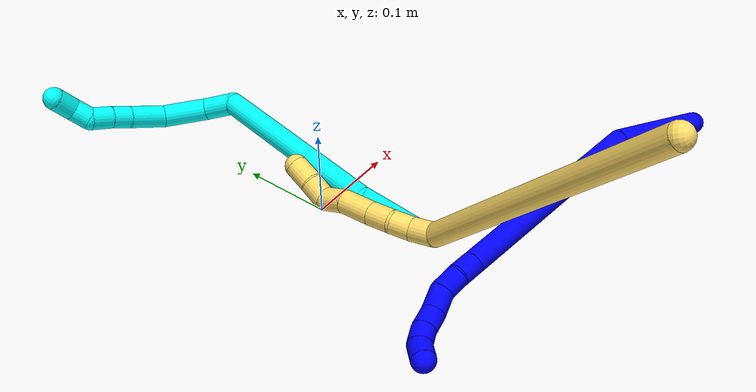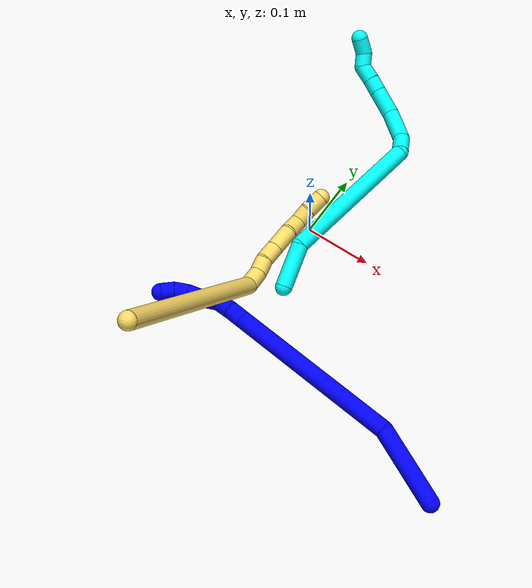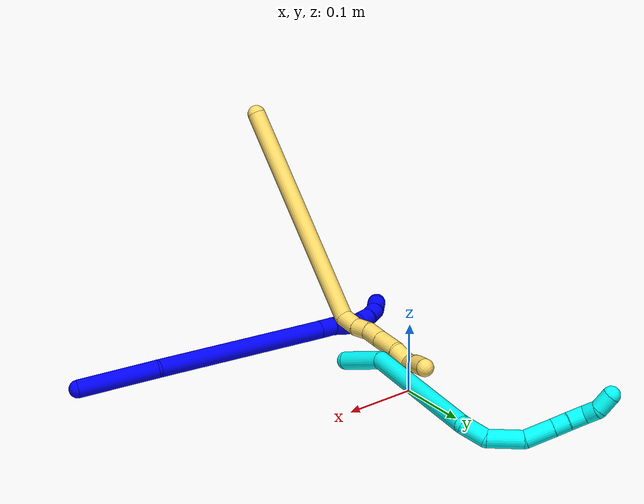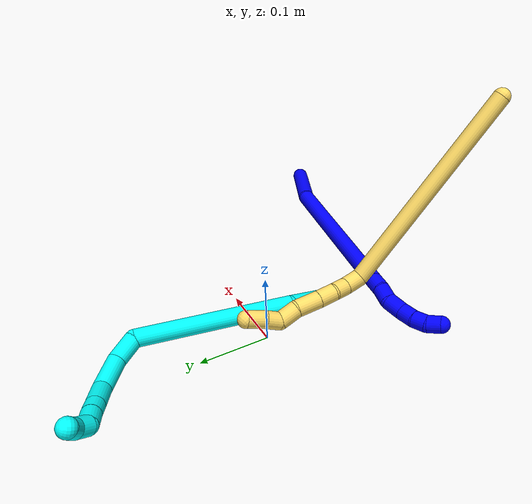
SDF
<sdf version="1.7">
 <world name="default">
  <model name="1">
   <static>0</static>
   <link name="1">
    <collision name="collision-cylinder-e_1_1_4">
     <pose>-0.034227 -0.004845 -0.044268 3.03258 -0.655284 -2.82325</pose>
     <geometry><cylinder><radius>0.0125</radius><length>0.112332</length></cylinder></geometry>
     <surface>
      <friction><ode><mu>1.16</mu><mu2>1.16</mu2><slip1>0</slip1><slip2>0</slip2></ode></friction>
      <contact><ode><kp>1e+06</kp><kd>1</kd><max_vel>0</max_vel><min_depth>0.001</min_depth></ode></contact>
     </surface>
    </collision>
    <visual name="visual-cylinder-e_1_1_4">
     <pose>-0.034227 -0.004845 -0.044268 3.03258 -0.655284 -2.82325</pose>
     <geometry><cylinder><radius>0.0125</radius><length>0.112332</length></cylinder></geometry>
     <material><ambient>0 0 1 1</ambient></material>
    </visual>
    <collision name="collision-cylinder-e_2_4_5">
     <pose>-0.110835 -0.000131 -0.207225 -3.06122 -0.341947 2.68399</pose>
     <geometry><cylinder><radius>0.0125</radius><length>0.25278</length></cylinder></geometry>
     <surface>
      <friction><ode><mu>1.16</mu><mu2>1.16</mu2><slip1>0</slip1><slip2>0</slip2></ode></friction>
      <contact><ode><kp>1e+06</kp><kd>1</kd><max_vel>0</max_vel><min_depth>0.001</min_depth></ode></contact>
     </surface>
    </collision>
    <visual name="visual-cylinder-e_2_4_5">
     <pose>-0.110835 -0.000131 -0.207225 -3.06122 -0.341947 2.68399</pose>
     <geometry><cylinder><radius>0.0125</radius><length>0.25278</length></cylinder></geometry>
     <material><ambient>0 0 1 1</ambient></material>
    </visual>
    <collision name="collision-cylinder-e_3_5_6">
     <pose>-0.156997 0.0101 -0.336649 -3.07926 -0.337997 2.78016</pose>
     <geometry><cylinder><radius>0.0125</radius><length>0.022804</length></cylinder></geometry>
     <surface>
      <friction><ode><mu>1.16</mu><mu2>1.16</mu2><slip1>0</slip1><slip2>0</slip2></ode></friction>
      <contact><ode><kp>1e+06</kp><kd>1</kd><max_vel>0</max_vel><min_depth>0.001</min_depth></ode></contact>
     </surface>
    </collision>
    <visual name="visual-cylinder-e_3_5_6">
     <pose>-0.156997 0.0101 -0.336649 -3.07926 -0.337997 2.78016</pose>
     <geometry><cylinder><radius>0.0125</radius><length>0.022804</length></cylinder></geometry>
     <material><ambient>0 0 1 1</ambient></material>
    </visual>
    <collision name="collision-cylinder-e_4_6_7">
     <pose>-0.164621 0.013742 -0.358194 -2.87326 -0.330274 1.78007</pose>
     <geometry><cylinder><radius>0.0125</radius><length>0.023702</length></cylinder></geometry>
     <surface>
      <friction><ode><mu>1.16</mu><mu2>1.16</mu2><slip1>0</slip1><slip2>0</slip2></ode></friction>
      <contact><ode><kp>1e+06</kp><kd>1</kd><max_vel>0</max_vel><min_depth>0.001</min_depth></ode></contact>
     </surface>
    </collision>
    <visual name="visual-cylinder-e_4_6_7">
     <pose>-0.164621 0.013742 -0.358194 -2.87326 -0.330274 1.78007</pose>
     <geometry><cylinder><radius>0.0125</radius><length>0.023702</length></cylinder></geometry>
     <material><ambient>0 0 1 1</ambient></material>
    </visual>
    <collision name="collision-cylinder-e_5_7_8">
     <pose>-0.16768 0.01943 -0.381578 -2.92882 0.060899 -0.555706</pose>
     <geometry><cylinder><radius>0.0125</radius><length>0.025776</length></cylinder></geometry>
     <surface>
      <friction><ode><mu>1.16</mu><mu2>1.16</mu2><slip1>0</slip1><slip2>0</slip2></ode></friction>
      <contact><ode><kp>1e+06</kp><kd>1</kd><max_vel>0</max_vel><min_depth>0.001</min_depth></ode></contact>
     </surface>
    </collision>
    <visual name="visual-cylinder-e_5_7_8">
     <pose>-0.16768 0.01943 -0.381578 -2.92882 0.060899 -0.555706</pose>
     <geometry><cylinder><radius>0.0125</radius><length>0.025776</length></cylinder></geometry>
     <material><ambient>0 0 1 1</ambient></material>
    </visual>
    <collision name="collision-cylinder-e_6_8_9">
     <pose>-0.167195 0.022464 -0.405319 -3.11317 -0.026804 1.51223</pose>
     <geometry><cylinder><radius>0.0125</radius><length>0.022351</length></cylinder></geometry>
     <surface>
      <friction><ode><mu>1.16</mu><mu2>1.16</mu2><slip1>0</slip1><slip2>0</slip2></ode></friction>
      <contact><ode><kp>1e+06</kp><kd>1</kd><max_vel>0</max_vel><min_depth>0.001</min_depth></ode></contact>
     </surface>
    </collision>
    <visual name="visual-cylinder-e_6_8_9">
     <pose>-0.167195 0.022464 -0.405319 -3.11317 -0.026804 1.51223</pose>
     <geometry><cylinder><radius>0.0125</radius><length>0.022351</length></cylinder></geometry>
     <material><ambient>0 0 1 1</ambient></material>
    </visual>
    <collision name="collision-cylinder-e_7_9_10">
     <pose>-0.165621 0.022345 -0.426383 3.09752 0.186944 2.67977</pose>
     <geometry><cylinder><radius>0.0125</radius><length>0.020166</length></cylinder></geometry>
     <surface>
      <friction><ode><mu>1.16</mu><mu2>1.16</mu2><slip1>0</slip1><slip2>0</slip2></ode></friction>
      <contact><ode><kp>1e+06</kp><kd>1</kd><max_vel>0</max_vel><min_depth>0.001</min_depth></ode></contact>
     </surface>
    </collision>
    <visual name="visual-cylinder-e_7_9_10">
     <pose>-0.165621 0.022345 -0.426383 3.09752 0.186944 2.67977</pose>
     <geometry><cylinder><radius>0.0125</radius><length>0.020166</length></cylinder></geometry>
     <material><ambient>0 0 1 1</ambient></material>
    </visual>
    <collision name="collision-cylinder-e_8_10_2">
     <pose>-0.158561 0.020172 -0.444706 2.93833 0.542475 2.43859</pose>
     <geometry><cylinder><radius>0.0125</radius><length>0.020088</length></cylinder></geometry>
     <surface>
      <friction><ode><mu>1.16</mu><mu2>1.16</mu2><slip1>0</slip1><slip2>0</slip2></ode></friction>
      <contact><ode><kp>1e+06</kp><kd>1</kd><max_vel>0</max_vel><min_depth>0.001</min_depth></ode></contact>
     </surface>
    </collision>
    <visual name="visual-cylinder-e_8_10_2">
     <pose>-0.158561 0.020172 -0.444706 2.93833 0.542475 2.43859</pose>
     <geometry><cylinder><radius>0.0125</radius><length>0.020088</length></cylinder></geometry>
     <material><ambient>0 0 1 1</ambient></material>
    </visual>
    <collision name="collision-sphere-2">
     <pose>-0.153376 0.018436 -0.453131 0 -0 0</pose>
     <geometry><sphere><radius>0.0125</radius></sphere></geometry>
     <surface>
      <friction><ode><mu>1.16</mu><mu2>1.16</mu2><slip1>0</slip1><slip2>0</slip2></ode></friction>
      <contact><ode><kp>1e+06</kp><kd>1</kd><max_vel>0</max_vel><min_depth>0.001</min_depth></ode></contact>
     </surface>
    </collision>
    <visual name="visual-sphere-2">
     <pose>-0.153376 0.018436 -0.453131 0 -0 0</pose>
     <geometry><sphere><radius>0.0125</radius></sphere></geometry>
     <material><ambient>0 0 1 1</ambient></material>
    </visual>
    <collision name="collision-sphere-10">
     <pose>-0.163747 0.021909 -0.436281 0 -0 0</pose>
     <geometry><sphere><radius>0.0125</radius></sphere></geometry>
     <surface>
      <friction><ode><mu>1.16</mu><mu2>1.16</mu2><slip1>0</slip1><slip2>0</slip2></ode></friction>
      <contact><ode><kp>1e+06</kp><kd>1</kd><max_vel>0</max_vel><min_depth>0.001</min_depth></ode></contact>
     </surface>
    </collision>
    <visual name="visual-sphere-10">
     <pose>-0.163747 0.021909 -0.436281 0 -0 0</pose>
     <geometry><sphere><radius>0.0125</radius></sphere></geometry>
     <material><ambient>0 0 1 1</ambient></material>
    </visual>
    <collision name="collision-sphere-9">
     <pose>-0.167495 0.022782 -0.416486 0 -0 0</pose>
     <geometry><sphere><radius>0.0125</radius></sphere></geometry>
     <surface>
      <friction><ode><mu>1.16</mu><mu2>1.16</mu2><slip1>0</slip1><slip2>0</slip2></ode></friction>
      <contact><ode><kp>1e+06</kp><kd>1</kd><max_vel>0</max_vel><min_depth>0.001</min_depth></ode></contact>
     </surface>
    </collision>
    <visual name="visual-sphere-9">
     <pose>-0.167495 0.022782 -0.416486 0 -0 0</pose>
     <geometry><sphere><radius>0.0125</radius></sphere></geometry>
     <material><ambient>0 0 1 1</ambient></material>
    </visual>
    <collision name="collision-sphere-4">
     <pose>-0.068453 -0.009691 -0.088537 0 -0 0</pose>
     <geometry><sphere><radius>0.0125</radius></sphere></geometry>
     <surface>
      <friction><ode><mu>1.16</mu><mu2>1.16</mu2><slip1>0</slip1><slip2>0</slip2></ode></friction>
      <contact><ode><kp>1e+06</kp><kd>1</kd><max_vel>0</max_vel><min_depth>0.001</min_depth></ode></contact>
     </surface>
    </collision>
    <visual name="visual-sphere-4">
     <pose>-0.068453 -0.009691 -0.088537 0 -0 0</pose>
     <geometry><sphere><radius>0.0125</radius></sphere></geometry>
     <material><ambient>0 0 1 1</ambient></material>
    </visual>
    <collision name="collision-sphere-1">
     <geometry><sphere><radius>0.0125</radius></sphere></geometry>
     <surface>
      <friction><ode><mu>1.16</mu><mu2>1.16</mu2><slip1>0</slip1><slip2>0</slip2></ode></friction>
      <contact><ode><kp>1e+06</kp><kd>1</kd><max_vel>0</max_vel><min_depth>0.001</min_depth></ode></contact>
     </surface>
    </collision>
    <visual name="visual-sphere-1">
     <geometry><sphere><radius>0.0125</radius></sphere></geometry>
     <material><ambient>0 0 1 1</ambient></material>
    </visual>
    <collision name="collision-sphere-8">
     <pose>-0.166896 0.022147 -0.394152 0 -0 0</pose>
     <geometry><sphere><radius>0.0125</radius></sphere></geometry>
     <surface>
      <friction><ode><mu>1.16</mu><mu2>1.16</mu2><slip1>0</slip1><slip2>0</slip2></ode></friction>
      <contact><ode><kp>1e+06</kp><kd>1</kd><max_vel>0</max_vel><min_depth>0.001</min_depth></ode></contact>
     </surface>
    </collision>
    <visual name="visual-sphere-8">
     <pose>-0.166896 0.022147 -0.394152 0 -0 0</pose>
     <geometry><sphere><radius>0.0125</radius></sphere></geometry>
     <material><ambient>0 0 1 1</ambient></material>
    </visual>
    <collision name="collision-sphere-5">
     <pose>-0.153216 0.00943 -0.325913 0 -0 0</pose>
     <geometry><sphere><radius>0.0125</radius></sphere></geometry>
     <surface>
      <friction><ode><mu>1.16</mu><mu2>1.16</mu2><slip1>0</slip1><slip2>0</slip2></ode></friction>
      <contact><ode><kp>1e+06</kp><kd>1</kd><max_vel>0</max_vel><min_depth>0.001</min_depth></ode></contact>
     </surface>
    </collision>
    <visual name="visual-sphere-5">
     <pose>-0.153216 0.00943 -0.325913 0 -0 0</pose>
     <geometry><sphere><radius>0.0125</radius></sphere></geometry>
     <material><ambient>0 0 1 1</ambient></material>
    </visual>
    <collision name="collision-sphere-6">
     <pose>-0.160778 0.01077 -0.347385 0 -0 0</pose>
     <geometry><sphere><radius>0.0125</radius></sphere></geometry>
     <surface>
      <friction><ode><mu>1.16</mu><mu2>1.16</mu2><slip1>0</slip1><slip2>0</slip2></ode></friction>
      <contact><ode><kp>1e+06</kp><kd>1</kd><max_vel>0</max_vel><min_depth>0.001</min_depth></ode></contact>
     </surface>
    </collision>
    <visual name="visual-sphere-6">
     <pose>-0.160778 0.01077 -0.347385 0 -0 0</pose>
     <geometry><sphere><radius>0.0125</radius></sphere></geometry>
     <material><ambient>0 0 1 1</ambient></material>
    </visual>
    <collision name="collision-sphere-7">
     <pose>-0.168465 0.016714 -0.369004 0 -0 0</pose>
     <geometry><sphere><radius>0.0125</radius></sphere></geometry>
     <surface>
      <friction><ode><mu>1.16</mu><mu2>1.16</mu2><slip1>0</slip1><slip2>0</slip2></ode></friction>
      <contact><ode><kp>1e+06</kp><kd>1</kd><max_vel>0</max_vel><min_depth>0.001</min_depth></ode></contact>
     </surface>
    </collision>
    <visual name="visual-sphere-7">
     <pose>-0.168465 0.016714 -0.369004 0 -0 0</pose>
     <geometry><sphere><radius>0.0125</radius></sphere></geometry>
     <material><ambient>0 0 1 1</ambient></material>
    </visual>
    <inertial>
     <pose>-0.107856 0.003675 -0.219897 0 -0 0</pose>
     <mass>0.5</mass>
     <inertia>
      <ixx>-0.000714</ixx>
      <ixy>0</ixy>
      <ixz>0</ixz>
      <iyy>0.001889</iyy>
      <iyz>0</iyz>
      <izz>0.000401</izz>
     </inertia>
    </inertial>
   </link>
   <pose>0.363833 -0.259538 0.012311 -1.59137 0.085326 -1.34274</pose>
  </model>
  <model name="3">
   <static>0</static>
   <link name="3">
    <collision name="collision-cylinder-e_1_1_4">
     <pose>-0.006513 0.004417 0.031629 -0.138763 -0.201174 0.014027</pose>
     <geometry><cylinder><radius>0.0125</radius><length>0.065187</length></cylinder></geometry>
     <surface>
      <friction><ode><mu>1.16</mu><mu2>1.16</mu2><slip1>0</slip1><slip2>0</slip2></ode></friction>
      <contact><ode><kp>1e+06</kp><kd>1</kd><max_vel>0</max_vel><min_depth>0.001</min_depth></ode></contact>
     </surface>
    </collision>
    <visual name="visual-cylinder-e_1_1_4">
     <pose>-0.006513 0.004417 0.031629 -0.138763 -0.201174 0.014027</pose>
     <geometry><cylinder><radius>0.0125</radius><length>0.065187</length></cylinder></geometry>
     <material><ambient>0.003922 1 0.996078 1</ambient></material>
    </visual>
    <collision name="collision-cylinder-e_2_4_5">
     <pose>0.009282 0.049785 0.161273 -0.395752 0.206992 -0.041645</pose>
     <geometry><cylinder><radius>0.0125</radius><length>0.217084</length></cylinder></geometry>
     <surface>
      <friction><ode><mu>1.16</mu><mu2>1.16</mu2><slip1>0</slip1><slip2>0</slip2></ode></friction>
      <contact><ode><kp>1e+06</kp><kd>1</kd><max_vel>0</max_vel><min_depth>0.001</min_depth></ode></contact>
     </surface>
    </collision>
    <visual name="visual-cylinder-e_2_4_5">
     <pose>0.009282 0.049785 0.161273 -0.395752 0.206992 -0.041645</pose>
     <geometry><cylinder><radius>0.0125</radius><length>0.217084</length></cylinder></geometry>
     <material><ambient>0.003922 1 0.996078 1</ambient></material>
    </visual>
    <collision name="collision-cylinder-e_3_5_6">
     <pose>0.025877 0.103856 0.269974 -0.887317 -0.325511 0.155767</pose>
     <geometry><cylinder><radius>0.0125</radius><length>0.035721</length></cylinder></geometry>
     <surface>
      <friction><ode><mu>1.16</mu><mu2>1.16</mu2><slip1>0</slip1><slip2>0</slip2></ode></friction>
      <contact><ode><kp>1e+06</kp><kd>1</kd><max_vel>0</max_vel><min_depth>0.001</min_depth></ode></contact>
     </surface>
    </collision>
    <visual name="visual-cylinder-e_3_5_6">
     <pose>0.025877 0.103856 0.269974 -0.887317 -0.325511 0.155767</pose>
     <geometry><cylinder><radius>0.0125</radius><length>0.035721</length></cylinder></geometry>
     <material><ambient>0.003922 1 0.996078 1</ambient></material>
    </visual>
    <collision name="collision-cylinder-e_4_6_7">
     <pose>0.001812 0.127265 0.294209 -0.649434 -0.823343 0.291871</pose>
     <geometry><cylinder><radius>0.0125</radius><length>0.05005</length></cylinder></geometry>
     <surface>
      <friction><ode><mu>1.16</mu><mu2>1.16</mu2><slip1>0</slip1><slip2>0</slip2></ode></friction>
      <contact><ode><kp>1e+06</kp><kd>1</kd><max_vel>0</max_vel><min_depth>0.001</min_depth></ode></contact>
     </surface>
    </collision>
    <visual name="visual-cylinder-e_4_6_7">
     <pose>0.001812 0.127265 0.294209 -0.649434 -0.823343 0.291871</pose>
     <geometry><cylinder><radius>0.0125</radius><length>0.05005</length></cylinder></geometry>
     <material><ambient>0.003922 1 0.996078 1</ambient></material>
    </visual>
    <collision name="collision-cylinder-e_5_7_8">
     <pose>-0.034211 0.138066 0.317517 -0.052553 -1.06556 0.030993</pose>
     <geometry><cylinder><radius>0.0125</radius><length>0.040384</length></cylinder></geometry>
     <surface>
      <friction><ode><mu>1.16</mu><mu2>1.16</mu2><slip1>0</slip1><slip2>0</slip2></ode></friction>
      <contact><ode><kp>1e+06</kp><kd>1</kd><max_vel>0</max_vel><min_depth>0.001</min_depth></ode></contact>
     </surface>
    </collision>
    <visual name="visual-cylinder-e_5_7_8">
     <pose>-0.034211 0.138066 0.317517 -0.052553 -1.06556 0.030993</pose>
     <geometry><cylinder><radius>0.0125</radius><length>0.040384</length></cylinder></geometry>
     <material><ambient>0.003922 1 0.996078 1</ambient></material>
    </visual>
    <collision name="collision-cylinder-e_6_8_9">
     <pose>-0.061149 0.138706 0.332484 -0.024433 -1.05883 0.014297</pose>
     <geometry><cylinder><radius>0.0125</radius><length>0.021264</length></cylinder></geometry>
     <surface>
      <friction><ode><mu>1.16</mu><mu2>1.16</mu2><slip1>0</slip1><slip2>0</slip2></ode></friction>
      <contact><ode><kp>1e+06</kp><kd>1</kd><max_vel>0</max_vel><min_depth>0.001</min_depth></ode></contact>
     </surface>
    </collision>
    <visual name="visual-cylinder-e_6_8_9">
     <pose>-0.061149 0.138706 0.332484 -0.024433 -1.05883 0.014297</pose>
     <geometry><cylinder><radius>0.0125</radius><length>0.021264</length></cylinder></geometry>
     <material><ambient>0.003922 1 0.996078 1</ambient></material>
    </visual>
    <collision name="collision-cylinder-e_7_9_10">
     <pose>-0.081386 0.139291 0.342935 -0.087084 -1.12328 0.054817</pose>
     <geometry><cylinder><radius>0.0125</radius><length>0.024333</length></cylinder></geometry>
     <surface>
      <friction><ode><mu>1.16</mu><mu2>1.16</mu2><slip1>0</slip1><slip2>0</slip2></ode></friction>
      <contact><ode><kp>1e+06</kp><kd>1</kd><max_vel>0</max_vel><min_depth>0.001</min_depth></ode></contact>
     </surface>
    </collision>
    <visual name="visual-cylinder-e_7_9_10">
     <pose>-0.081386 0.139291 0.342935 -0.087084 -1.12328 0.054817</pose>
     <geometry><cylinder><radius>0.0125</radius><length>0.024333</length></cylinder></geometry>
     <material><ambient>0.003922 1 0.996078 1</ambient></material>
    </visual>
    <collision name="collision-cylinder-e_8_10_11">
     <pose>-0.096954 0.138626 0.357617 0.118508 -0.450748 -0.0272</pose>
     <geometry><cylinder><radius>0.0125</radius><length>0.021115</length></cylinder></geometry>
     <surface>
      <friction><ode><mu>1.16</mu><mu2>1.16</mu2><slip1>0</slip1><slip2>0</slip2></ode></friction>
      <contact><ode><kp>1e+06</kp><kd>1</kd><max_vel>0</max_vel><min_depth>0.001</min_depth></ode></contact>
     </surface>
    </collision>
    <visual name="visual-cylinder-e_8_10_11">
     <pose>-0.096954 0.138626 0.357617 0.118508 -0.450748 -0.0272</pose>
     <geometry><cylinder><radius>0.0125</radius><length>0.021115</length></cylinder></geometry>
     <material><ambient>0.003922 1 0.996078 1</ambient></material>
    </visual>
    <collision name="collision-cylinder-e_9_11_2">
     <pose>-0.109632 0.131662 0.37448 0.66636 -0.707441 -0.254204</pose>
     <geometry><cylinder><radius>0.0125</radius><length>0.024862</length></cylinder></geometry>
     <surface>
      <friction><ode><mu>1.16</mu><mu2>1.16</mu2><slip1>0</slip1><slip2>0</slip2></ode></friction>
      <contact><ode><kp>1e+06</kp><kd>1</kd><max_vel>0</max_vel><min_depth>0.001</min_depth></ode></contact>
     </surface>
    </collision>
    <visual name="visual-cylinder-e_9_11_2">
     <pose>-0.109632 0.131662 0.37448 0.66636 -0.707441 -0.254204</pose>
     <geometry><cylinder><radius>0.0125</radius><length>0.024862</length></cylinder></geometry>
     <material><ambient>0.003922 1 0.996078 1</ambient></material>
    </visual>
    <collision name="collision-sphere-2">
     <pose>-0.117711 0.125822 0.381907 0 -0 0</pose>
     <geometry><sphere><radius>0.0125</radius></sphere></geometry>
     <surface>
      <friction><ode><mu>1.16</mu><mu2>1.16</mu2><slip1>0</slip1><slip2>0</slip2></ode></friction>
      <contact><ode><kp>1e+06</kp><kd>1</kd><max_vel>0</max_vel><min_depth>0.001</min_depth></ode></contact>
     </surface>
    </collision>
    <visual name="visual-sphere-2">
     <pose>-0.117711 0.125822 0.381907 0 -0 0</pose>
     <geometry><sphere><radius>0.0125</radius></sphere></geometry>
     <material><ambient>0.003922 1 0.996078 1</ambient></material>
    </visual>
    <collision name="collision-sphere-11">
     <pose>-0.101553 0.137502 0.367053 0 -0 0</pose>
     <geometry><sphere><radius>0.0125</radius></sphere></geometry>
     <surface>
      <friction><ode><mu>1.16</mu><mu2>1.16</mu2><slip1>0</slip1><slip2>0</slip2></ode></friction>
      <contact><ode><kp>1e+06</kp><kd>1</kd><max_vel>0</max_vel><min_depth>0.001</min_depth></ode></contact>
     </surface>
    </collision>
    <visual name="visual-sphere-11">
     <pose>-0.101553 0.137502 0.367053 0 -0 0</pose>
     <geometry><sphere><radius>0.0125</radius></sphere></geometry>
     <material><ambient>0.003922 1 0.996078 1</ambient></material>
    </visual>
    <collision name="collision-sphere-10">
     <pose>-0.092354 0.139749 0.34818 0 -0 0</pose>
     <geometry><sphere><radius>0.0125</radius></sphere></geometry>
     <surface>
      <friction><ode><mu>1.16</mu><mu2>1.16</mu2><slip1>0</slip1><slip2>0</slip2></ode></friction>
      <contact><ode><kp>1e+06</kp><kd>1</kd><max_vel>0</max_vel><min_depth>0.001</min_depth></ode></contact>
     </surface>
    </collision>
    <visual name="visual-sphere-10">
     <pose>-0.092354 0.139749 0.34818 0 -0 0</pose>
     <geometry><sphere><radius>0.0125</radius></sphere></geometry>
     <material><ambient>0.003922 1 0.996078 1</ambient></material>
    </visual>
    <collision name="collision-sphere-9">
     <pose>-0.070418 0.138833 0.33769 0 -0 0</pose>
     <geometry><sphere><radius>0.0125</radius></sphere></geometry>
     <surface>
      <friction><ode><mu>1.16</mu><mu2>1.16</mu2><slip1>0</slip1><slip2>0</slip2></ode></friction>
      <contact><ode><kp>1e+06</kp><kd>1</kd><max_vel>0</max_vel><min_depth>0.001</min_depth></ode></contact>
     </surface>
    </collision>
    <visual name="visual-sphere-9">
     <pose>-0.070418 0.138833 0.33769 0 -0 0</pose>
     <geometry><sphere><radius>0.0125</radius></sphere></geometry>
     <material><ambient>0.003922 1 0.996078 1</ambient></material>
    </visual>
    <collision name="collision-sphere-4">
     <pose>-0.013026 0.008835 0.063259 0 -0 0</pose>
     <geometry><sphere><radius>0.0125</radius></sphere></geometry>
     <surface>
      <friction><ode><mu>1.16</mu><mu2>1.16</mu2><slip1>0</slip1><slip2>0</slip2></ode></friction>
      <contact><ode><kp>1e+06</kp><kd>1</kd><max_vel>0</max_vel><min_depth>0.001</min_depth></ode></contact>
     </surface>
    </collision>
    <visual name="visual-sphere-4">
     <pose>-0.013026 0.008835 0.063259 0 -0 0</pose>
     <geometry><sphere><radius>0.0125</radius></sphere></geometry>
     <material><ambient>0.003922 1 0.996078 1</ambient></material>
    </visual>
    <collision name="collision-sphere-1">
     <geometry><sphere><radius>0.0125</radius></sphere></geometry>
     <surface>
      <friction><ode><mu>1.16</mu><mu2>1.16</mu2><slip1>0</slip1><slip2>0</slip2></ode></friction>
      <contact><ode><kp>1e+06</kp><kd>1</kd><max_vel>0</max_vel><min_depth>0.001</min_depth></ode></contact>
     </surface>
    </collision>
    <visual name="visual-sphere-1">
     <geometry><sphere><radius>0.0125</radius></sphere></geometry>
     <material><ambient>0.003922 1 0.996078 1</ambient></material>
    </visual>
    <collision name="collision-sphere-8">
     <pose>-0.051881 0.138579 0.327277 0 -0 0</pose>
     <geometry><sphere><radius>0.0125</radius></sphere></geometry>
     <surface>
      <friction><ode><mu>1.16</mu><mu2>1.16</mu2><slip1>0</slip1><slip2>0</slip2></ode></friction>
      <contact><ode><kp>1e+06</kp><kd>1</kd><max_vel>0</max_vel><min_depth>0.001</min_depth></ode></contact>
     </surface>
    </collision>
    <visual name="visual-sphere-8">
     <pose>-0.051881 0.138579 0.327277 0 -0 0</pose>
     <geometry><sphere><radius>0.0125</radius></sphere></geometry>
     <material><ambient>0.003922 1 0.996078 1</ambient></material>
    </visual>
    <collision name="collision-sphere-5">
     <pose>0.031589 0.090735 0.259288 0 -0 0</pose>
     <geometry><sphere><radius>0.0125</radius></sphere></geometry>
     <surface>
      <friction><ode><mu>1.16</mu><mu2>1.16</mu2><slip1>0</slip1><slip2>0</slip2></ode></friction>
      <contact><ode><kp>1e+06</kp><kd>1</kd><max_vel>0</max_vel><min_depth>0.001</min_depth></ode></contact>
     </surface>
    </collision>
    <visual name="visual-sphere-5">
     <pose>0.031589 0.090735 0.259288 0 -0 0</pose>
     <geometry><sphere><radius>0.0125</radius></sphere></geometry>
     <material><ambient>0.003922 1 0.996078 1</ambient></material>
    </visual>
    <collision name="collision-sphere-6">
     <pose>0.020166 0.116977 0.280661 0 -0 0</pose>
     <geometry><sphere><radius>0.0125</radius></sphere></geometry>
     <surface>
      <friction><ode><mu>1.16</mu><mu2>1.16</mu2><slip1>0</slip1><slip2>0</slip2></ode></friction>
      <contact><ode><kp>1e+06</kp><kd>1</kd><max_vel>0</max_vel><min_depth>0.001</min_depth></ode></contact>
     </surface>
    </collision>
    <visual name="visual-sphere-6">
     <pose>0.020166 0.116977 0.280661 0 -0 0</pose>
     <geometry><sphere><radius>0.0125</radius></sphere></geometry>
     <material><ambient>0.003922 1 0.996078 1</ambient></material>
    </visual>
    <collision name="collision-sphere-7">
     <pose>-0.016542 0.137552 0.307757 0 -0 0</pose>
     <geometry><sphere><radius>0.0125</radius></sphere></geometry>
     <surface>
      <friction><ode><mu>1.16</mu><mu2>1.16</mu2><slip1>0</slip1><slip2>0</slip2></ode></friction>
      <contact><ode><kp>1e+06</kp><kd>1</kd><max_vel>0</max_vel><min_depth>0.001</min_depth></ode></contact>
     </surface>
    </collision>
    <visual name="visual-sphere-7">
     <pose>-0.016542 0.137552 0.307757 0 -0 0</pose>
     <geometry><sphere><radius>0.0125</radius></sphere></geometry>
     <material><ambient>0.003922 1 0.996078 1</ambient></material>
    </visual>
    <inertial>
     <pose>-0.01366 0.078579 0.213078 0 -0 0</pose>
     <mass>0.5</mass>
     <inertia>
      <ixx>0.000847</ixx>
      <ixy>0</ixy>
      <ixz>0</ixz>
      <iyy>0.000829</iyy>
      <iyz>0</iyz>
      <izz>-0.000456</izz>
     </inertia>
    </inertial>
   </link>
   <pose>0.026124 -0.104955 0.011498 -1.12179 0.149986 0.049926</pose>
  </model>
  <model name="5">
   <static>0</static>
   <link name="5">
    <collision name="collision-cylinder-e_1_1_4">
     <pose>0.057206 -0.002178 -0.146405 3.12672 0.372458 3.06267</pose>
     <geometry><cylinder><radius>0.0125</radius><length>0.3144</length></cylinder></geometry>
     <surface>
      <friction><ode><mu>1.16</mu><mu2>1.16</mu2><slip1>0</slip1><slip2>0</slip2></ode></friction>
      <contact><ode><kp>1e+06</kp><kd>1</kd><max_vel>0</max_vel><min_depth>0.001</min_depth></ode></contact>
     </surface>
    </collision>
    <visual name="visual-cylinder-e_1_1_4">
     <pose>0.057206 -0.002178 -0.146405 3.12672 0.372458 3.06267</pose>
     <geometry><cylinder><radius>0.0125</radius><length>0.3144</length></cylinder></geometry>
     <material><ambient>1 0.858824 0.4 1</ambient></material>
    </visual>
    <collision name="collision-cylinder-e_2_4_5">
     <pose>0.111725 -0.001351 -0.305246 -2.90446 -0.20703 1.43433</pose>
     <geometry><cylinder><radius>0.0125</radius><length>0.026145</length></cylinder></geometry>
     <surface>
      <friction><ode><mu>1.16</mu><mu2>1.16</mu2><slip1>0</slip1><slip2>0</slip2></ode></friction>
      <contact><ode><kp>1e+06</kp><kd>1</kd><max_vel>0</max_vel><min_depth>0.001</min_depth></ode></contact>
     </surface>
    </collision>
    <visual name="visual-cylinder-e_2_4_5">
     <pose>0.111725 -0.001351 -0.305246 -2.90446 -0.20703 1.43433</pose>
     <geometry><cylinder><radius>0.0125</radius><length>0.026145</length></cylinder></geometry>
     <material><ambient>1 0.858824 0.4 1</ambient></material>
    </visual>
    <collision name="collision-cylinder-e_3_5_6">
     <pose>0.10377 0.004324 -0.327054 -2.86416 -0.495535 2.13299</pose>
     <geometry><cylinder><radius>0.0125</radius><length>0.022156</length></cylinder></geometry>
     <surface>
      <friction><ode><mu>1.16</mu><mu2>1.16</mu2><slip1>0</slip1><slip2>0</slip2></ode></friction>
      <contact><ode><kp>1e+06</kp><kd>1</kd><max_vel>0</max_vel><min_depth>0.001</min_depth></ode></contact>
     </surface>
    </collision>
    <visual name="visual-cylinder-e_3_5_6">
     <pose>0.10377 0.004324 -0.327054 -2.86416 -0.495535 2.13299</pose>
     <geometry><cylinder><radius>0.0125</radius><length>0.022156</length></cylinder></geometry>
     <material><ambient>1 0.858824 0.4 1</ambient></material>
    </visual>
    <collision name="collision-cylinder-e_4_6_7">
     <pose>0.095493 0.011177 -0.347993 -2.79445 -0.239958 1.20469</pose>
     <geometry><cylinder><radius>0.0125</radius><length>0.025325</length></cylinder></geometry>
     <surface>
      <friction><ode><mu>1.16</mu><mu2>1.16</mu2><slip1>0</slip1><slip2>0</slip2></ode></friction>
      <contact><ode><kp>1e+06</kp><kd>1</kd><max_vel>0</max_vel><min_depth>0.001</min_depth></ode></contact>
     </surface>
    </collision>
    <visual name="visual-cylinder-e_4_6_7">
     <pose>0.095493 0.011177 -0.347993 -2.79445 -0.239958 1.20469</pose>
     <geometry><cylinder><radius>0.0125</radius><length>0.025325</length></cylinder></geometry>
     <material><ambient>1 0.858824 0.4 1</ambient></material>
    </visual>
    <collision name="collision-cylinder-e_5_7_8">
     <pose>0.087819 0.021717 -0.375237 -2.75647 -0.269068 1.21363</pose>
     <geometry><cylinder><radius>0.0125</radius><length>0.035098</length></cylinder></geometry>
     <surface>
      <friction><ode><mu>1.16</mu><mu2>1.16</mu2><slip1>0</slip1><slip2>0</slip2></ode></friction>
      <contact><ode><kp>1e+06</kp><kd>1</kd><max_vel>0</max_vel><min_depth>0.001</min_depth></ode></contact>
     </surface>
    </collision>
    <visual name="visual-cylinder-e_5_7_8">
     <pose>0.087819 0.021717 -0.375237 -2.75647 -0.269068 1.21363</pose>
     <geometry><cylinder><radius>0.0125</radius><length>0.035098</length></cylinder></geometry>
     <material><ambient>1 0.858824 0.4 1</ambient></material>
    </visual>
    <collision name="collision-cylinder-e_6_8_9">
     <pose>0.082171 0.030744 -0.404647 -2.94946 -0.070104 0.698016</pose>
     <geometry><cylinder><radius>0.0125</radius><length>0.028046</length></cylinder></geometry>
     <surface>
      <friction><ode><mu>1.16</mu><mu2>1.16</mu2><slip1>0</slip1><slip2>0</slip2></ode></friction>
      <contact><ode><kp>1e+06</kp><kd>1</kd><max_vel>0</max_vel><min_depth>0.001</min_depth></ode></contact>
     </surface>
    </collision>
    <visual name="visual-cylinder-e_6_8_9">
     <pose>0.082171 0.030744 -0.404647 -2.94946 -0.070104 0.698016</pose>
     <geometry><cylinder><radius>0.0125</radius><length>0.028046</length></cylinder></geometry>
     <material><ambient>1 0.858824 0.4 1</ambient></material>
    </visual>
    <collision name="collision-cylinder-e_7_9_10">
     <pose>0.075407 0.040764 -0.424778 -2.2873 -0.53546 1.08476</pose>
     <geometry><cylinder><radius>0.0125</radius><length>0.022662</length></cylinder></geometry>
     <surface>
      <friction><ode><mu>1.16</mu><mu2>1.16</mu2><slip1>0</slip1><slip2>0</slip2></ode></friction>
      <contact><ode><kp>1e+06</kp><kd>1</kd><max_vel>0</max_vel><min_depth>0.001</min_depth></ode></contact>
     </surface>
    </collision>
    <visual name="visual-cylinder-e_7_9_10">
     <pose>0.075407 0.040764 -0.424778 -2.2873 -0.53546 1.08476</pose>
     <geometry><cylinder><radius>0.0125</radius><length>0.022662</length></cylinder></geometry>
     <material><ambient>1 0.858824 0.4 1</ambient></material>
    </visual>
    <collision name="collision-cylinder-e_8_10_2">
     <pose>0.064621 0.05659 -0.439798 -2.36451 -0.392477 0.904187</pose>
     <geometry><cylinder><radius>0.0125</radius><length>0.026168</length></cylinder></geometry>
     <surface>
      <friction><ode><mu>1.16</mu><mu2>1.16</mu2><slip1>0</slip1><slip2>0</slip2></ode></friction>
      <contact><ode><kp>1e+06</kp><kd>1</kd><max_vel>0</max_vel><min_depth>0.001</min_depth></ode></contact>
     </surface>
    </collision>
    <visual name="visual-cylinder-e_8_10_2">
     <pose>0.064621 0.05659 -0.439798 -2.36451 -0.392477 0.904187</pose>
     <geometry><cylinder><radius>0.0125</radius><length>0.026168</length></cylinder></geometry>
     <material><ambient>1 0.858824 0.4 1</ambient></material>
    </visual>
    <collision name="collision-sphere-2">
     <pose>0.059617 0.065067 -0.448417 0 -0 0</pose>
     <geometry><sphere><radius>0.0125</radius></sphere></geometry>
     <surface>
      <friction><ode><mu>1.16</mu><mu2>1.16</mu2><slip1>0</slip1><slip2>0</slip2></ode></friction>
      <contact><ode><kp>1e+06</kp><kd>1</kd><max_vel>0</max_vel><min_depth>0.001</min_depth></ode></contact>
     </surface>
    </collision>
    <visual name="visual-sphere-2">
     <pose>0.059617 0.065067 -0.448417 0 -0 0</pose>
     <geometry><sphere><radius>0.0125</radius></sphere></geometry>
     <material><ambient>1 0.858824 0.4 1</ambient></material>
    </visual>
    <collision name="collision-sphere-10">
     <pose>0.069626 0.048113 -0.431178 0 -0 0</pose>
     <geometry><sphere><radius>0.0125</radius></sphere></geometry>
     <surface>
      <friction><ode><mu>1.16</mu><mu2>1.16</mu2><slip1>0</slip1><slip2>0</slip2></ode></friction>
      <contact><ode><kp>1e+06</kp><kd>1</kd><max_vel>0</max_vel><min_depth>0.001</min_depth></ode></contact>
     </surface>
    </collision>
    <visual name="visual-sphere-10">
     <pose>0.069626 0.048113 -0.431178 0 -0 0</pose>
     <geometry><sphere><radius>0.0125</radius></sphere></geometry>
     <material><ambient>1 0.858824 0.4 1</ambient></material>
    </visual>
    <collision name="collision-sphere-9">
     <pose>0.081189 0.033415 -0.418378 0 -0 0</pose>
     <geometry><sphere><radius>0.0125</radius></sphere></geometry>
     <surface>
      <friction><ode><mu>1.16</mu><mu2>1.16</mu2><slip1>0</slip1><slip2>0</slip2></ode></friction>
      <contact><ode><kp>1e+06</kp><kd>1</kd><max_vel>0</max_vel><min_depth>0.001</min_depth></ode></contact>
     </surface>
    </collision>
    <visual name="visual-sphere-9">
     <pose>0.081189 0.033415 -0.418378 0 -0 0</pose>
     <geometry><sphere><radius>0.0125</radius></sphere></geometry>
     <material><ambient>1 0.858824 0.4 1</ambient></material>
    </visual>
    <collision name="collision-sphere-4">
     <pose>0.114412 -0.004356 -0.292811 0 -0 0</pose>
     <geometry><sphere><radius>0.0125</radius></sphere></geometry>
     <surface>
      <friction><ode><mu>1.16</mu><mu2>1.16</mu2><slip1>0</slip1><slip2>0</slip2></ode></friction>
      <contact><ode><kp>1e+06</kp><kd>1</kd><max_vel>0</max_vel><min_depth>0.001</min_depth></ode></contact>
     </surface>
    </collision>
    <visual name="visual-sphere-4">
     <pose>0.114412 -0.004356 -0.292811 0 -0 0</pose>
     <geometry><sphere><radius>0.0125</radius></sphere></geometry>
     <material><ambient>1 0.858824 0.4 1</ambient></material>
    </visual>
    <collision name="collision-sphere-1">
     <geometry><sphere><radius>0.0125</radius></sphere></geometry>
     <surface>
      <friction><ode><mu>1.16</mu><mu2>1.16</mu2><slip1>0</slip1><slip2>0</slip2></ode></friction>
      <contact><ode><kp>1e+06</kp><kd>1</kd><max_vel>0</max_vel><min_depth>0.001</min_depth></ode></contact>
     </surface>
    </collision>
    <visual name="visual-sphere-1">
     <geometry><sphere><radius>0.0125</radius></sphere></geometry>
     <material><ambient>1 0.858824 0.4 1</ambient></material>
    </visual>
    <collision name="collision-sphere-8">
     <pose>0.083153 0.028073 -0.390916 0 -0 0</pose>
     <geometry><sphere><radius>0.0125</radius></sphere></geometry>
     <surface>
      <friction><ode><mu>1.16</mu><mu2>1.16</mu2><slip1>0</slip1><slip2>0</slip2></ode></friction>
      <contact><ode><kp>1e+06</kp><kd>1</kd><max_vel>0</max_vel><min_depth>0.001</min_depth></ode></contact>
     </surface>
    </collision>
    <visual name="visual-sphere-8">
     <pose>0.083153 0.028073 -0.390916 0 -0 0</pose>
     <geometry><sphere><radius>0.0125</radius></sphere></geometry>
     <material><ambient>1 0.858824 0.4 1</ambient></material>
    </visual>
    <collision name="collision-sphere-5">
     <pose>0.109038 0.001654 -0.317681 0 -0 0</pose>
     <geometry><sphere><radius>0.0125</radius></sphere></geometry>
     <surface>
      <friction><ode><mu>1.16</mu><mu2>1.16</mu2><slip1>0</slip1><slip2>0</slip2></ode></friction>
      <contact><ode><kp>1e+06</kp><kd>1</kd><max_vel>0</max_vel><min_depth>0.001</min_depth></ode></contact>
     </surface>
    </collision>
    <visual name="visual-sphere-5">
     <pose>0.109038 0.001654 -0.317681 0 -0 0</pose>
     <geometry><sphere><radius>0.0125</radius></sphere></geometry>
     <material><ambient>1 0.858824 0.4 1</ambient></material>
    </visual>
    <collision name="collision-sphere-6">
     <pose>0.098503 0.006993 -0.336427 0 -0 0</pose>
     <geometry><sphere><radius>0.0125</radius></sphere></geometry>
     <surface>
      <friction><ode><mu>1.16</mu><mu2>1.16</mu2><slip1>0</slip1><slip2>0</slip2></ode></friction>
      <contact><ode><kp>1e+06</kp><kd>1</kd><max_vel>0</max_vel><min_depth>0.001</min_depth></ode></contact>
     </surface>
    </collision>
    <visual name="visual-sphere-6">
     <pose>0.098503 0.006993 -0.336427 0 -0 0</pose>
     <geometry><sphere><radius>0.0125</radius></sphere></geometry>
     <material><ambient>1 0.858824 0.4 1</ambient></material>
    </visual>
    <collision name="collision-sphere-7">
     <pose>0.092484 0.015362 -0.359559 0 -0 0</pose>
     <geometry><sphere><radius>0.0125</radius></sphere></geometry>
     <surface>
      <friction><ode><mu>1.16</mu><mu2>1.16</mu2><slip1>0</slip1><slip2>0</slip2></ode></friction>
      <contact><ode><kp>1e+06</kp><kd>1</kd><max_vel>0</max_vel><min_depth>0.001</min_depth></ode></contact>
     </surface>
    </collision>
    <visual name="visual-sphere-7">
     <pose>0.092484 0.015362 -0.359559 0 -0 0</pose>
     <geometry><sphere><radius>0.0125</radius></sphere></geometry>
     <material><ambient>1 0.858824 0.4 1</ambient></material>
    </visual>
    <inertial>
     <pose>0.068822 0.007376 -0.231447 0 -0 0</pose>
     <mass>0.5</mass>
     <inertia>
      <ixx>-0.002198</ixx>
      <ixy>0</ixy>
      <ixz>0</ixz>
      <iyy>0.002803</iyy>
      <iyz>0</iyz>
      <izz>-0.000948</izz>
     </inertia>
    </inertial>
   </link>
   <pose>-0.01329 -0.360281 0.283535 0.70587 0.883009 -0.546271</pose>
  </model>
 </world>
</sdf>
